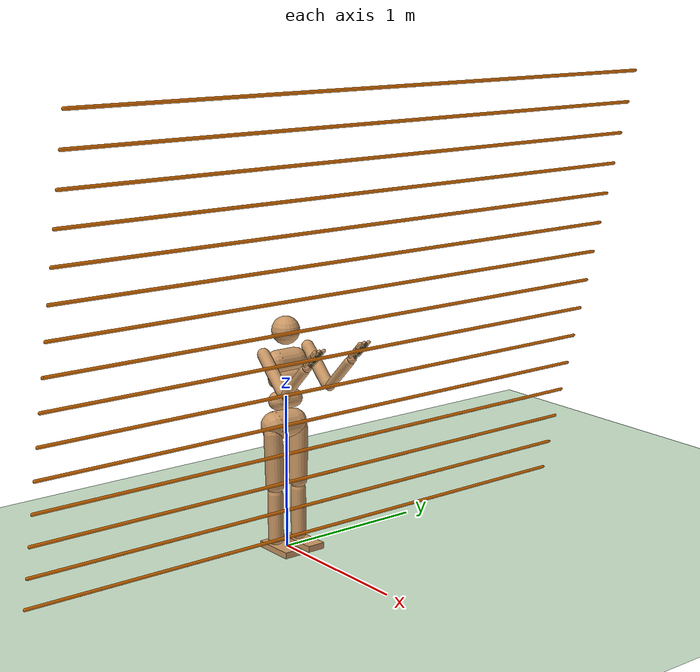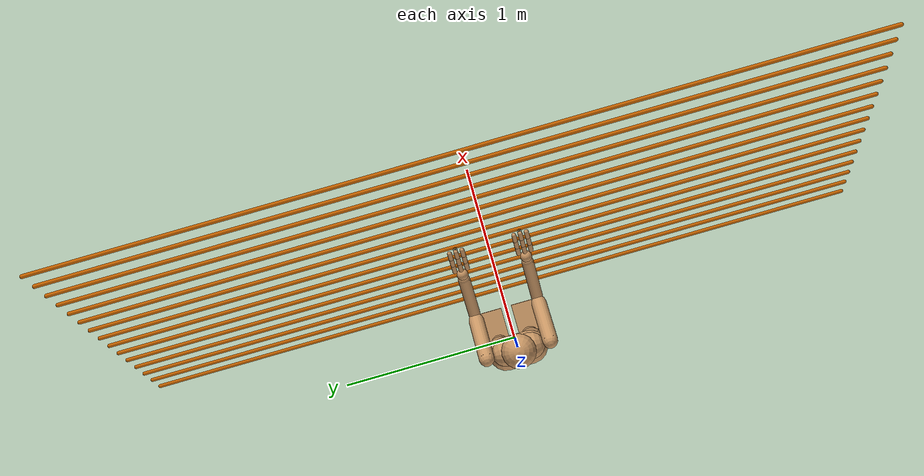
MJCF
<mujoco model="humanoid">
    <compiler angle="degree" inertiafromgeom="true"/>
    <default>
        <joint armature="1" damping="1" limited="true"/>
        <geom conaffinity="1" condim="4" solref=".006 1" contype="1" margin=".00" gap=".00" material="geom" rgba="0.8 0.6 .4 1"  friction="2.0 .05 .05"/>
        <motor ctrllimited="true" ctrlrange="-.4 .4"/>
    </default>
    <option integrator="RK4" iterations="50" solver="PGS" timestep="0.003">
    </option>
    <size nkey="5" nuser_geom="1"/>
    <visual>
        <map fogend="5" fogstart="3"/>
    </visual>
    <asset>
        <texture builtin="gradient" height="100" rgb1=".4 .5 .6" rgb2="0 0 0" type="skybox" width="100"/>
        <texture builtin="flat" height="1278" mark="cross" markrgb="1 1 1" name="texgeom" random="0.01" rgb1="0.8 0.6 0.4" rgb2="0.8 0.6 0.4" type="cube" width="127"/>
        <texture builtin="checker" height="100" name="texplane" rgb1="0 0 0" rgb2="0.8 0.8 0.8" type="2d" width="100"/>
        <material name="MatPlane" reflectance="0.5" shininess="1" specular="1" texrepeat="60 60" texture="texplane"/>
        <material name="geom" texture="texgeom" texuniform="true"/>
        <mesh name="foot_mesh_right" file="foot_right.obj"/>
        <mesh name="foot_mesh_left" scale="1 -1 1" file="foot_right.obj"/>
        <!-- Non-convex mesh collision isn't supported -->
    </asset>
    <worldbody>
        <light cutoff="100" diffuse="1 1 1" dir="-0 0 -1.3" directional="true" exponent="1" pos="0 0 1.3" specular=".1 .1 .1"/>
        <geom condim="3" friction="1 .1 .1" material="MatPlane" name="floor" pos="0 0 0" group="1" rgba="0.8 0.9 0.8 1" size="20 20 0.125" type="plane"/>
        <body name="ladder" pos="0.4 0 0">
            <geom name="rung0" type="capsule" size="0.01 2" pos="-.1 0 .2" group="1" axisangle="1 0 0 90" rgba="0.8 0.4 0 1"/>
            <geom name="rung1" type="capsule" size="0.01 2" pos="-.05 0 .4" group="1" axisangle="1 0 0 90" rgba="0.8 0.4 0 1"/>
            <geom name="rung2" type="capsule" size="0.01 2" pos="0 0 .6" group="1" axisangle="1 0 0 90" rgba="0.8 0.4 0 1"/>
            <geom name="rung3" type="capsule" size="0.01 2" pos=".05 0 .8" group="1" axisangle="1 0 0 90" rgba="0.8 0.4 0 1"/>
            <geom name="rung4" type="capsule" size="0.01 2" pos=".1 0 1.0" group="1" axisangle="1 0 0 90" rgba="0.8 0.4 0 1"/>
            <geom name="rung5" type="capsule" size="0.01 2" pos=".15 0 1.2" group="1" axisangle="1 0 0 90" rgba="0.8 0.4 0 1"/>
            <geom name="rung6" type="capsule" size="0.01 2" pos=".2 0 1.4" group="1" axisangle="1 0 0 90" rgba="0.8 0.4 0 1"/>
            <geom name="rung7" type="capsule" size="0.01 2" pos=".25 0 1.6" group="1" axisangle="1 0 0 90" rgba="0.8 0.4 0 1"/>
            <geom name="rung8" type="capsule" size="0.01 2" pos=".3 0 1.8" group="1" axisangle="1 0 0 90" rgba="0.8 0.4 0 1"/>
            <geom name="rung9" type="capsule" size="0.01 2" pos=".35 0 2.0" group="1" axisangle="1 0 0 90" rgba="0.8 0.4 0 1"/>
            <geom name="rung10" type="capsule" size="0.01 2" pos=".4 0 2.2" group="1" axisangle="1 0 0 90" rgba="0.8 0.4 0 1"/>
            <geom name="rung11" type="capsule" size="0.01 2" pos=".45 0 2.4" group="1" axisangle="1 0 0 90" rgba="0.8 0.4 0 1"/>
            <geom name="rung12" type="capsule" size="0.01 2" pos=".5 0 2.6" group="1" axisangle="1 0 0 90" rgba="0.8 0.4 0 1"/>
            <geom name="rung13" type="capsule" size="0.01 2" pos=".55 0 2.8" group="1" axisangle="1 0 0 90" rgba="0.8 0.4 0 1"/>
            <geom name="rung14" type="capsule" size="0.01 2" pos=".6 0 3.0" group="1" axisangle="1 0 0 90" rgba="0.8 0.4 0 1"/>
        </body>
        <body name="torso" pos="0 0 1.24">
            <camera name="track" mode="trackcom" pos="0 -4 0" xyaxes="1 0 0 0 0 1"/>
            <joint armature="0" damping="0" limited="false" name="root" pos="0 0 0" stiffness="0" type="free"/>
            <geom fromto="0 -.07 0 0 .07 0" name="torso1" size="0.07" type="capsule"/>
            <geom name="head" pos="0 0 .19" size=".09" type="sphere" user="258"/>
            <geom fromto="-.01 -.06 -.12 -.01 .06 -.12" name="uwaist" size="0.06" type="capsule"/>
            <body name="lwaist" pos="-.01 0 -0.260" quat="1.000 0 -0.002 0">
                <geom fromto="0 -.06 0 0 .06 0" name="lwaist" size="0.06" type="capsule"/>
                <joint armature="0.02" axis="0 0 1" damping="5" name="abdomen_z" pos="0 0 0.065" range="-45 45" stiffness="20" type="hinge"/>
                <joint armature="0.02" axis="0 1 0" damping="5" name="abdomen_y" pos="0 0 0.065" range="-75 30" stiffness="10" type="hinge"/>
                <body name="pelvis" pos="0 0 -0.165" quat="1.000 0 -0.002 0">
                    <joint armature="0.02" axis="1 0 0" damping="5" name="abdomen_x" pos="0 0 0.1" range="-35 35" stiffness="10" type="hinge"/>
                    <geom fromto="-.02 -.07 0 -.02 .07 0" name="butt" size="0.09" type="capsule"/>
                    <body name="right_thigh" pos="0 -0.1 -0.04">
                        <joint armature="0.01" axis="1 0 0" damping="5" name="right_hip_x" pos="0 0 0" range="-25 5" stiffness="10" type="hinge"/>
                        <joint armature="0.01" axis="0 0 1" damping="5" name="right_hip_z" pos="0 0 0" range="-60 35" stiffness="10" type="hinge"/>
                        <joint armature="0.0080" axis="0 1 0" damping="5" name="right_hip_y" pos="0 0 0" range="-110 20" stiffness="20" type="hinge"/>
                        <geom fromto="0 0 0 0 0.01 -.34" name="right_thigh1" size="0.06" type="capsule"/>
                        <body name="right_shin" pos="0 0.01 -0.403">
                            <joint armature="0.0060" axis="0 -1 0" damping="5" name="right_knee" pos="0 0 .02" range="-160 -2" stiffness="10" type="hinge"/>
                            <geom fromto="0 0 0 0 0 -.3" name="right_shin1" size="0.049" type="capsule"/>
                            <body name="right_foot" pos="0 0 -0.33">
                                <joint armature="0.0028" axis="1 0 0" damping="4" name="right_ankle_x" pos="-.042 0 0" range="-3 3" stiffness="5" type="hinge"/>
                                <joint armature="0.0028" axis="0 1 0" damping="4" name="right_ankle_y" pos="-.042 0 0" range="-20 20" stiffness="5" type="hinge"/>
                                <geom name="right_foot" pos=".050 0 -0.02" size="0.14 0.06 0.02" type="box"/>
                            </body>
                        </body>
                    </body>
                    <body name="left_thigh" pos="0 0.1 -0.04">
                        <joint armature="0.01" axis="-1 0 0" damping="5" name="left_hip_x" pos="0 0 0" range="-25 5" stiffness="10" type="hinge"/>
                        <joint armature="0.01" axis="0 0 -1" damping="5" name="left_hip_z" pos="0 0 0" range="-60 35" stiffness="10" type="hinge"/>
                        <joint armature="0.01" axis="0 1 0" damping="5" name="left_hip_y" pos="0 0 0" range="-110 20" stiffness="20" type="hinge"/>
                        <geom fromto="0 0 0 0 -0.01 -.34" name="left_thigh1" size="0.06" type="capsule"/>
                        <body name="left_shin" pos="0 -0.01 -0.403">
                            <joint armature="0.0060" axis="0 -1 0" damping="5" name="left_knee" pos="0 0 .02" range="-160 -2" stiffness="10" type="hinge"/>
                            <geom fromto="0 0 0 0 0 -.3" name="left_shin1" size="0.049" type="capsule"/>
                            <body name="left_foot" pos="0 0 -0.33">
                                <joint armature="0.0028" axis="1 0 0" damping="4" name="left_ankle_x" pos="-.042 0 0" range="-3 3" stiffness="5" type="hinge"/>
                                <joint armature="0.0028" axis="0 1 0" damping="4" name="left_ankle_y" pos="-.042 0 0" range="-20 20" stiffness="5" type="hinge"/>
                                <geom name="left_foot" pos=".050 0 -0.02" size="0.14 0.06 0.02" type="box"/>
                            </body>
                        </body>
                    </body>
                </body>
            </body>
            <body name="right_upper_arm" pos="0 -0.17 0.06">
                <joint armature="0.0068" axis="0 1 0" damping="2" name="right_shoulder1" pos="0 0 0" range="-95 50" stiffness="2" type="hinge"/>
                <joint armature="0.0068" axis="-1 0 1" damping="2" name="right_shoulder2" pos="0 0 0" range="-30 30" stiffness="2" type="hinge"/>
                <geom fromto="0 0 0 .196 0 -.196" name="right_uarm1" size="0.04 0.16" type="capsule"/>
                <body name="right_lower_arm" pos=".22 0 -.22">
                    <joint armature="0.0028" axis="0 1 0" damping="2" name="right_elbow" pos="0 0 0" range="-70 70" stiffness="2" type="hinge"/>
                    <geom fromto="0.01 0 0.01 .206 0 .206" name="right_larm" size="0.031" type="capsule"/>
                    <body name="right_hand" pos=".232 0 .232">
                        <joint armature="0.0028" axis="0 1 0" damping="2" name="right_wrist" pos="0 0 0" range="-40 60" stiffness="2" type="hinge"/>
                        <geom name="right_palm" size="0.03" type="sphere"/>
                        <body name="finger_base_r" pos=".0245 0 .0245">
                            <joint armature="0.002" axis="0 1 0" name="finger_base_joint_r" pos="0 0 0" range="10 80" stiffness="0.02" type="hinge"/>
                            <geom name="finger_base_r1" fromto="0 .033 0 .033 .033 .033" size=".012" type="capsule"/>
                            <geom name="finger_base_r2" fromto=".0 .0 .0 .033 0 .033" size=".012" type="capsule"/>
                            <geom name="finger_base_r3" fromto=".0 -.033 0 .033 -.033 .033" size=".012" type="capsule"/>
                            <site name="base_site_r" pos=".015 0 -.005" size="0.012" rgba="0 0 0 .2"/>
                            <body name="finger_mid_r" pos=".034 0 .034">
                                <joint armature="0.002" axis="0 1 0" name="finger_mid_joint_r" pos="0 0 0" range="10 90" stiffness="0.02" type="hinge"/>
                                <geom name="finger_mid_r1" fromto="0 .033 0 .032 .033 .032" size=".012" type="capsule"/>
                                <geom name="finger_mid_r2" fromto="0 0 0 .032 .0 .032" size=".012" type="capsule"/>
                                <geom name="finger_mid_r3" fromto="0 -.033 0 .032 -.033 .032" size=".012" type="capsule"/>
                                <site name="mid_site_r" pos=".015 0 -.005" size="0.012" rgba="0 0 0 .2"/>
                                <body name="finger_tip_r" pos=".034 0 .034">
                                    <joint armature="0.002" axis="0 1 0" name="finger_tip_joint_r" pos="0 0 0" range="10 80" stiffness=".02" type="hinge"/>
                                    <geom name="finger_tip_r1" fromto=".0 .033 0 .029 .033 .029" size=".012" type="capsule"/>
                                    <geom name="finger_tip_r2" fromto=".0 .0 .0 .029 0 .029" size=".012" type="capsule"/>
                                    <geom name="finger_tip_r3" fromto=".0 -.033 0 .029 -.033 .029" size=".012" type="capsule"/>
                                    <site name="top_site_r" pos=".015 0 -.005" size="0.012" rgba="0 0 0 .2"/>
                                    <site name="tip_site_r" pos=".041 .0 .021" size="0.012" rgba="0 0 0 .2"/>
                                </body>
                            </body>
                        </body>
                    </body>
                    <camera pos="0 0 0"/>
                </body>
            </body>
            <body name="left_upper_arm" pos="0 0.17 0.06">
                <joint armature="0.0068" axis="0 1 0" damping="2" name="left_shoulder1" pos="0 0 0" range="-95 50" stiffness="2" type="hinge"/>
                <joint armature="0.0068" axis="-1 0 1" damping="2" name="left_shoulder2" pos="0 0 0" range="-30 30" stiffness="2" type="hinge"/>
                <geom fromto="0 0 0 .196 0 -.196" name="left_uarm1" size="0.04 0.16" type="capsule"/>
                <body name="left_lower_arm" pos=".22 0 -.22">
                    <joint armature="0.0028" axis="0 1 0" damping="2" name="left_elbow" pos="0 0 0" range="-70 70" stiffness="2" type="hinge"/>
                    <geom fromto="0.01 0 0.01 .206 0 .206" name="left_larm" size="0.031" type="capsule"/>
                    <body name="left_hand" pos=".232 0 .232">
                        <joint armature="0.0028" axis="0 1 0" damping="2" name="left_wrist" pos="0 0 0" range="-40 60" stiffness="2" type="hinge"/>
                        <geom name="left_palm" size="0.03" type="sphere"/>
                        <body name="finger_base_l" pos=".0245 0 .0245">
                            <joint armature="0.002" axis="0 1 0" name="finger_base_joint_l" pos="0 0 0" range="10 80" stiffness="0.02" type="hinge"/>
                            <geom name="finger_base_l1" fromto="0 .033 0 .033 .033 .033" size=".012" type="capsule"/>
                            <geom name="finger_base_l2" fromto=".0 .0 .0 .033 0 .033" size=".012" type="capsule"/>
                            <geom name="finger_base_l3" fromto=".0 -.033 0 .033 -.033 .033" size=".012" type="capsule"/>
                            <site name="base_site_l" pos=".015 0 -.005" size="0.012" rgba="0 0 0 .2"/>
                            <body name="finger_mid_l" pos=".034 0 .034">
                                <joint armature="0.002" axis="0 1 0" name="finger_mid_joint_l" pos="0 0 0" range="10 90" stiffness="0.02" type="hinge"/>
                                <geom name="finger_mid_l1" fromto="0 .033 0 .032 .033 .032" size=".012" type="capsule"/>
                                <geom name="finger_mid_l2" fromto="0 0 0 .032 .0 .032" size=".012" type="capsule"/>
                                <geom name="finger_mid_l3" fromto="0 -.033 0 .032 -.033 .032" size=".012" type="capsule"/>
                                <site name="mid_site_l" pos=".015 0 -.005" size="0.012" rgba="0 0 0 .2"/>
                                <body name="finger_tip_l" pos=".034 0 .034">
                                    <joint armature="0.002" axis="0 1 0" name="finger_tip_joint_l" pos="0 0 0" range="10 80" stiffness=".02" type="hinge"/>
                                    <geom name="finger_tip_l1" fromto=".0 .033 0 .029 .033 .029" size=".012" type="capsule"/>
                                    <geom name="finger_tip_l2" fromto=".0 .0 .0 .029 0 .029" size=".012" type="capsule"/>
                                    <geom name="finger_tip_l3" fromto=".0 -.033 0 .029 -.033 .029" size=".012" type="capsule"/>
                                    <site name="top_site_l" pos=".015 0 -.005" size="0.012" rgba="0 0 0 .2"/>
                                    <site name="tip_site_l" pos=".041 .0 .021" size="0.012" rgba="0 0 0 .2"/>
                                </body>
                            </body>
                        </body>
                    </body>
                </body>
            </body>
        </body>
    </worldbody>
    <tendon>
        <fixed name="left_hipknee">
            <joint coef="-1" joint="left_hip_y"/>
            <joint coef="1" joint="left_knee"/>
        </fixed>
        <fixed name="right_hipknee">
            <joint coef="-1" joint="right_hip_y"/>
            <joint coef="1" joint="right_knee"/>
        </fixed>
        <spatial name="finger_tendon_r" width="0.005" rgba=".4 .6 .4 1">
            <site site="base_site_r"/>
            <site site="mid_site_r"/>
            <site site="top_site_r"/>
            <site site="tip_site_r"/>
        </spatial>
        <spatial name="finger_tendon_l" width="0.005" rgba=".4 .6 .4 1">
            <site site="base_site_l"/>
            <site site="mid_site_l"/>
            <site site="top_site_l"/>
            <site site="tip_site_l"/>
        </spatial>
    </tendon>

    <actuator>
        <motor gear="100" joint="right_shoulder1" name="right_shoulder1"/>
        <motor gear="100" joint="right_shoulder2" name="right_shoulder2"/>
        <motor gear="100" joint="left_shoulder1" name="left_shoulder1"/>
        <motor gear="100" joint="left_shoulder2" name="left_shoulder2"/>
        <motor gear="130" joint="right_elbow" name="right_elbow"/>
        <motor gear="130" joint="left_elbow" name="left_elbow"/>
        <motor gear="30" joint="right_wrist" name="right_wrist"/>
        <motor gear="30" joint="left_wrist" name="left_wrist"/>
        <motor gear="100" joint="abdomen_y" name="abdomen_y"/>
        <motor gear="100" joint="abdomen_z" name="abdomen_z"/>
        <motor gear="100" joint="abdomen_x" name="abdomen_x"/>
        <motor gear="100" joint="right_hip_x" name="right_hip_x"/>
        <motor gear="100" joint="right_hip_z" name="right_hip_z"/>
        <motor gear="300" joint="right_hip_y" name="right_hip_y"/>
        <motor gear="100" joint="left_hip_x" name="left_hip_x"/>
        <motor gear="100" joint="left_hip_z" name="left_hip_z"/>
        <motor gear="300" joint="left_hip_y" name="left_hip_y"/>
        <motor gear="200" joint="right_knee" name="right_knee"/>
        <motor gear="200" joint="left_knee" name="left_knee"/>
        <motor gear="40" joint="right_ankle_x" name="right_ankle_x"/>
        <motor gear="40" joint="right_ankle_y" name="right_ankle_y"/>
        <motor gear="40" joint="left_ankle_x" name="left_ankle_x"/>
        <motor gear="40" joint="left_ankle_y" name="left_ankle_y"/>
        <motor tendon="finger_tendon_r" ctrlrange="-0.4 0.4" gear="2000" name="fingers_r"/>
        <motor tendon="finger_tendon_l" ctrlrange="-0.4 0.4" gear="2000" name="fingers_l"/>
    </actuator>
    <keyframe>
   <key name="keyframe2"
   qpos="
   0
   0
   1.24
   1
   0
   0
   0
   0
   0
   0
  -0.038
   0.056
  -1.66
  -2
   0
  -0.11
   0
   0
   0
   0
   0
   0
   0.098
   0
   0.24
  -0.34
   0.4
   0.73
   0.75
  -0.41
   0
   0.5
  -0.43
   0.55
   0.77
   0.85 "/>
    </keyframe>
</mujoco>
